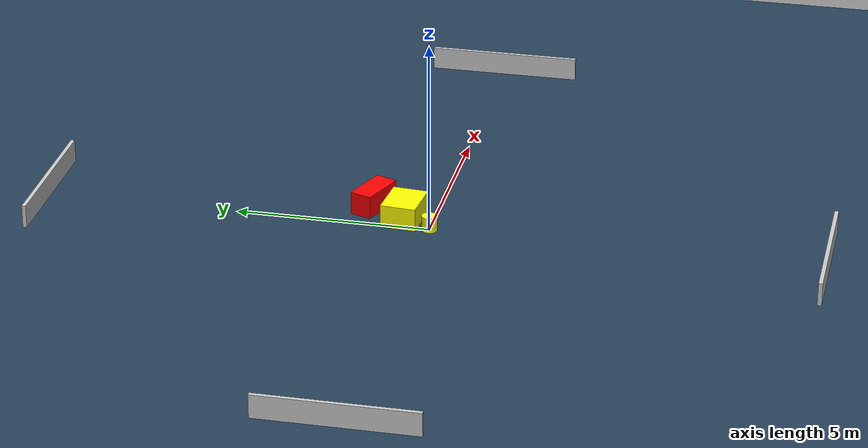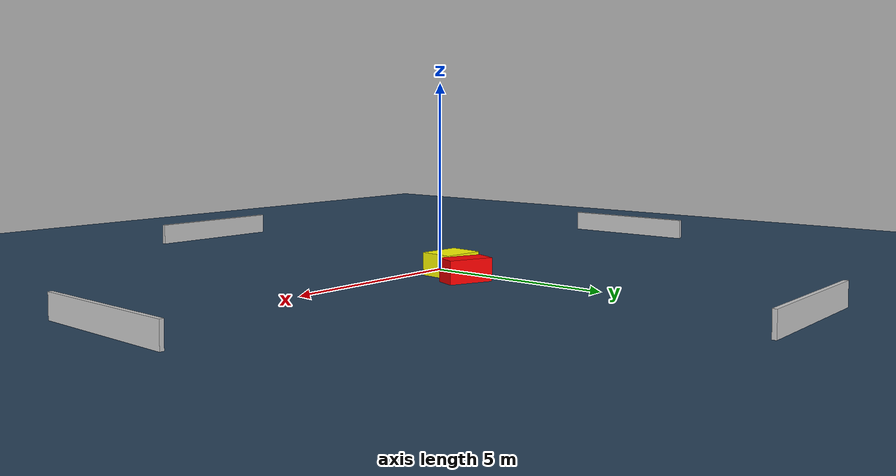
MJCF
<?xml version="1.0" ?>
<mujoco model="generated_environment">
  <option timestep="0.01" integrator="RK4" cone="elliptic"/>
  <default>
    <geom density="1"/>
  </default>
  <asset>
    <texture builtin="gradient" height="3072" name="skybox" rgb1="0.3 0.5 0.7" rgb2="0 0 0" type="skybox" width="512"/>
    <texture builtin="checker" height="300" name="groundplane" rgb1="0.2 0.3 0.4" rgb2="0.1 0.2 0.3" type="2d" width="300"/>
    <material name="groundplane" reflectance="0.2" texrepeat="5 5" texture="groundplane"/>
  </asset>
  <worldbody>
    <light dir="0 0 -1" directional="true" pos="0 0 1.5"/>
    <geom condim="3" friction="0.5 0.005 0.001" material="groundplane" name="floor" pos="0 0 0" size="0 0 0.05" type="plane"/>
    <body name="walls">
      <geom name="wall_1" condim="4" pos="-10.0 0.0 0.3" rgba="0.800000011920929 0.800000011920929 0.800000011920929 1.0" size="0.05 2.0 0.3" type="box"/>
      <geom name="wall_2" condim="4" pos="10.0 0.0 0.3" rgba="0.800000011920929 0.800000011920929 0.800000011920929 1.0" size="0.05 2.0 0.3" type="box"/>
      <geom name="wall_3" condim="4" pos="0.0 -10.0 0.3" rgba="0.800000011920929 0.800000011920929 0.800000011920929 1.0" size="2.0 0.05 0.3" type="box"/>
      <geom name="wall_4" condim="4" pos="0.0 10.0 0.3" rgba="0.800000011920929 0.800000011920929 0.800000011920929 1.0" size="2.0 0.05 0.3" type="box"/>
    </body>
    <body name="robot">
      <joint name="joint_x" type="slide" pos="0 0 0" axis="1 0 0"/>
      <joint name="joint_y" type="slide" pos="0 0 0" axis="0 1 0"/>
      <geom name="robot" type="cylinder" pos="0.0 0.0 0.2" size="0.2 0.2 0.0" mass="5.0" friction="1.0 0.005 0.0001" condim="4" rgba="1.0 1.0 0.0 1.0"/>
    </body>
    <body name="obstacle_1_movable">
      <geom name="obstacle_1_movable" condim="4" pos="0.43692139532482055 0.7467772512070648 0.3" euler="0 0 85.12669724746745" friction="0.0 0.005 0.001" rgba="1.0 1.0 0.0 1.0" size="0.4568302709772916 0.5686369316617306 0.3" type="box" mass="0.1"/>
      <joint type="free"/>
    </body>
    <body name="obstacle_2_static">
      <geom name="obstacle_2_static" condim="4" pos="0.9577153692896225 1.6609390426156823 0.3" euler="0 0 69.05766088272256" friction="0.0 0.005 0.001" rgba="1.0 0.0 0.0 1.0" size="0.29201723293507637 0.5982227992361452 0.3" type="box"/>
    </body>
  </worldbody>
  <actuator>
    <motor name="actuator_x" joint="joint_x" gear="1" ctrlrange="-1 1"/>
    <motor name="actuator_y" joint="joint_y" gear="1" ctrlrange="-1 1"/>
  </actuator>
</mujoco>
